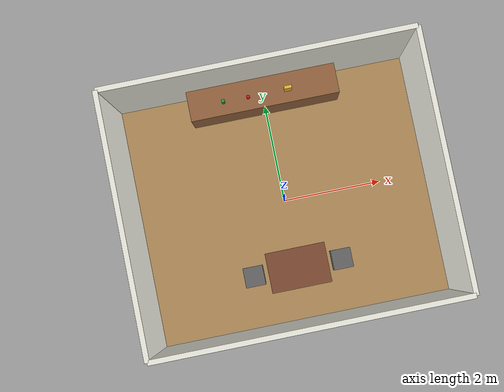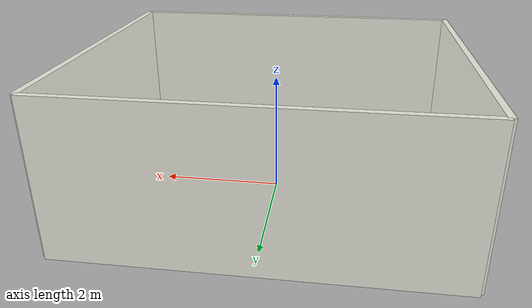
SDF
<?xml version="1.0"?>
<sdf version="1.10">
  <world name="home">
    <physics name="1ms" type="ignored">
      <max_step_size>0.001</max_step_size>
      <real_time_factor>1.0</real_time_factor>
    </physics>

    <plugin filename="gz-sim-physics-system"           name="gz::sim::systems::Physics"/>
    <plugin filename="gz-sim-user-commands-system"     name="gz::sim::systems::UserCommands"/>
    <plugin filename="gz-sim-scene-broadcaster-system" name="gz::sim::systems::SceneBroadcaster"/>
    <plugin filename="gz-sim-sensors-system"           name="gz::sim::systems::Sensors">
      <render_engine>ogre2</render_engine>
    </plugin>

    <light type="directional" name="sun">
      <cast_shadows>true</cast_shadows>
      <pose>0 0 10 0 0 0</pose>
      <diffuse>0.9 0.9 0.9 1</diffuse>
      <specular>0.2 0.2 0.2 1</specular>
      <direction>-0.5 0.1 -0.9</direction>
    </light>

    <!-- Floor (wooden look). Room is 6m (x) x 5m (y), centered at origin. -->
    <model name="floor">
      <static>true</static>
      <link name="link">
        <collision name="c"><geometry><plane><normal>0 0 1</normal><size>6 5</size></plane></geometry></collision>
        <visual name="v">
          <geometry><plane><normal>0 0 1</normal><size>6 5</size></plane></geometry>
          <material>
            <ambient>0.60 0.45 0.30 1</ambient>
            <diffuse>0.70 0.55 0.35 1</diffuse>
          </material>
        </visual>
      </link>
    </model>

    <!-- Walls: 0.1 m thick, 2.5 m tall.  -->
    <!-- North wall (+Y = 2.5) -->
    <model name="wall_north">
      <static>true</static>
      <pose>0 2.5 1.25 0 0 0</pose>
      <link name="link">
        <collision name="c"><geometry><box><size>6 0.1 2.5</size></box></geometry></collision>
        <visual name="v"><geometry><box><size>6 0.1 2.5</size></box></geometry>
          <material><ambient>0.9 0.9 0.85 1</ambient><diffuse>0.95 0.95 0.9 1</diffuse></material></visual>
      </link>
    </model>
    <!-- South wall (-Y = -2.5) -->
    <model name="wall_south">
      <static>true</static>
      <pose>0 -2.5 1.25 0 0 0</pose>
      <link name="link">
        <collision name="c"><geometry><box><size>6 0.1 2.5</size></box></geometry></collision>
        <visual name="v"><geometry><box><size>6 0.1 2.5</size></box></geometry>
          <material><ambient>0.9 0.9 0.85 1</ambient><diffuse>0.95 0.95 0.9 1</diffuse></material></visual>
      </link>
    </model>
    <!-- East wall (+X = 3.0) -->
    <model name="wall_east">
      <static>true</static>
      <pose>3.0 0 1.25 0 0 0</pose>
      <link name="link">
        <collision name="c"><geometry><box><size>0.1 5 2.5</size></box></geometry></collision>
        <visual name="v"><geometry><box><size>0.1 5 2.5</size></box></geometry>
          <material><ambient>0.9 0.9 0.85 1</ambient><diffuse>0.95 0.95 0.9 1</diffuse></material></visual>
      </link>
    </model>
    <!-- West wall (-X = -3.0) -->
    <model name="wall_west">
      <static>true</static>
      <pose>-3.0 0 1.25 0 0 0</pose>
      <link name="link">
        <collision name="c"><geometry><box><size>0.1 5 2.5</size></box></geometry></collision>
        <visual name="v"><geometry><box><size>0.1 5 2.5</size></box></geometry>
          <material><ambient>0.9 0.9 0.85 1</ambient><diffuse>0.95 0.95 0.9 1</diffuse></material></visual>
      </link>
    </model>

    <!-- Kitchen counter along north wall: 3 m long, 0.6 m deep, 0.9 m tall -->
    <model name="kitchen_counter">
      <static>true</static>
      <pose>0 2.15 0.45 0 0 0</pose>
      <link name="link">
        <collision name="c"><geometry><box><size>3.0 0.6 0.9</size></box></geometry></collision>
        <visual name="v"><geometry><box><size>3.0 0.6 0.9</size></box></geometry>
          <material><ambient>0.5 0.35 0.2 1</ambient><diffuse>0.6 0.4 0.25 1</diffuse></material></visual>
      </link>
    </model>

    <!-- The robot footprint at spawn spans x -0.58..0.07, y +-0.28 around the
         origin, so furniture must stay clear of it. -->

    <!-- Dining table: 1.2 x 0.8 x 0.75 m, south of the spawn point -->
    <model name="dining_table">
      <static>true</static>
      <pose>0 -1.4 0.375 0 0 0</pose>
      <link name="link">
        <collision name="c"><geometry><box><size>1.2 0.8 0.75</size></box></geometry></collision>
        <visual name="v"><geometry><box><size>1.2 0.8 0.75</size></box></geometry>
          <material><ambient>0.4 0.25 0.15 1</ambient><diffuse>0.5 0.3 0.2 1</diffuse></material></visual>
      </link>
    </model>

    <!-- Two chairs (simple boxes as placeholder) -->
    <model name="chair_1">
      <static>true</static>
      <pose>-0.9 -1.4 0.23 0 0 0</pose>
      <link name="link">
        <collision name="c"><geometry><box><size>0.4 0.4 0.45</size></box></geometry></collision>
        <visual name="v"><geometry><box><size>0.4 0.4 0.45</size></box></geometry>
          <material><ambient>0.3 0.3 0.3 1</ambient><diffuse>0.4 0.4 0.4 1</diffuse></material></visual>
      </link>
    </model>
    <model name="chair_2">
      <static>true</static>
      <pose>0.9 -1.4 0.23 0 0 0</pose>
      <link name="link">
        <collision name="c"><geometry><box><size>0.4 0.4 0.45</size></box></geometry></collision>
        <visual name="v"><geometry><box><size>0.4 0.4 0.45</size></box></geometry>
          <material><ambient>0.3 0.3 0.3 1</ambient><diffuse>0.4 0.4 0.4 1</diffuse></material></visual>
      </link>
    </model>

    <!-- Graspable objects on kitchen counter. Non-static so pick can lift them. -->
    <model name="bottle">
      <pose>-0.8 2.1 1.0 0 0 0</pose>
      <link name="link">
        <inertial>
          <mass>0.3</mass>
          <inertia><ixx>0.001</ixx><iyy>0.001</iyy><izz>0.0005</izz>
            <ixy>0</ixy><ixz>0</ixz><iyz>0</iyz></inertia>
        </inertial>
        <collision name="c"><geometry><cylinder><radius>0.035</radius><length>0.22</length></cylinder></geometry></collision>
        <visual name="v"><geometry><cylinder><radius>0.035</radius><length>0.22</length></cylinder></geometry>
          <material><ambient>0.1 0.4 0.2 1</ambient><diffuse>0.15 0.6 0.3 1</diffuse></material></visual>
      </link>
    </model>

    <model name="can">
      <pose>-0.3 2.1 0.96 0 0 0</pose>
      <link name="link">
        <inertial>
          <mass>0.15</mass>
          <inertia><ixx>0.0004</ixx><iyy>0.0004</iyy><izz>0.0002</izz>
            <ixy>0</ixy><ixz>0</ixz><iyz>0</iyz></inertia>
        </inertial>
        <collision name="c"><geometry><cylinder><radius>0.033</radius><length>0.12</length></cylinder></geometry></collision>
        <visual name="v"><geometry><cylinder><radius>0.033</radius><length>0.12</length></cylinder></geometry>
          <material><ambient>0.5 0.05 0.05 1</ambient><diffuse>0.8 0.1 0.1 1</diffuse></material></visual>
      </link>
    </model>

    <model name="cereal_box">
      <pose>0.5 2.1 1.05 0 0 0</pose>
      <link name="link">
        <inertial>
          <mass>0.4</mass>
          <inertia><ixx>0.003</ixx><iyy>0.003</iyy><izz>0.001</izz>
            <ixy>0</ixy><ixz>0</ixz><iyz>0</iyz></inertia>
        </inertial>
        <collision name="c"><geometry><box><size>0.15 0.06 0.3</size></box></geometry></collision>
        <visual name="v"><geometry><box><size>0.15 0.06 0.3</size></box></geometry>
          <material><ambient>0.8 0.6 0.1 1</ambient><diffuse>0.95 0.75 0.2 1</diffuse></material></visual>
      </link>
    </model>

  </world>
</sdf>
